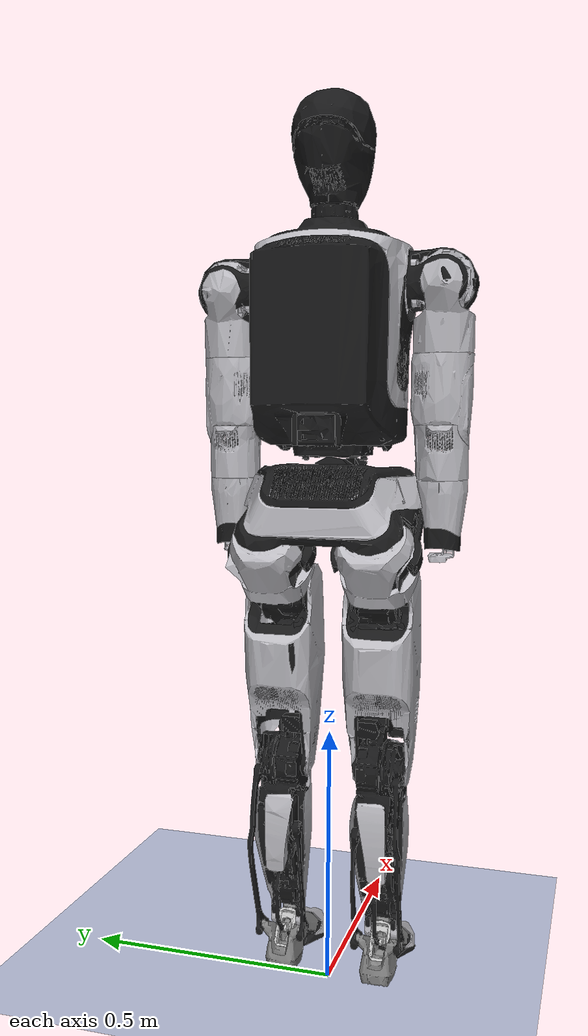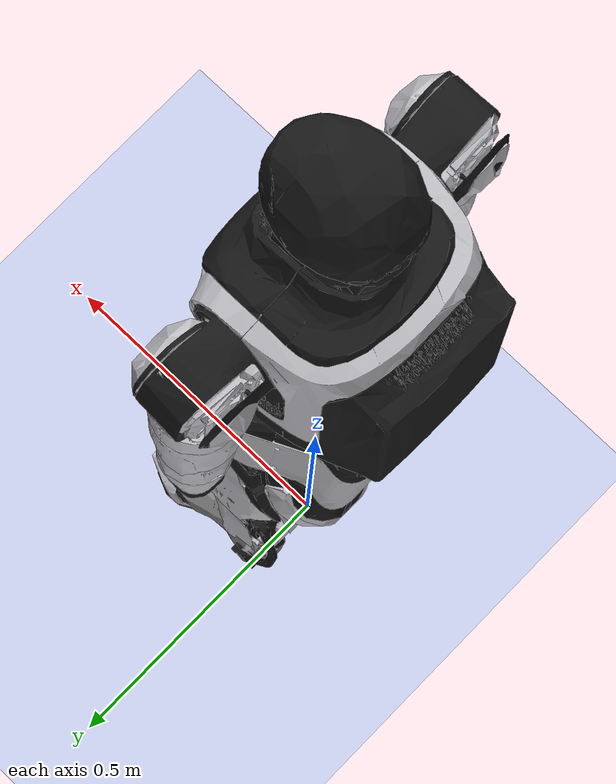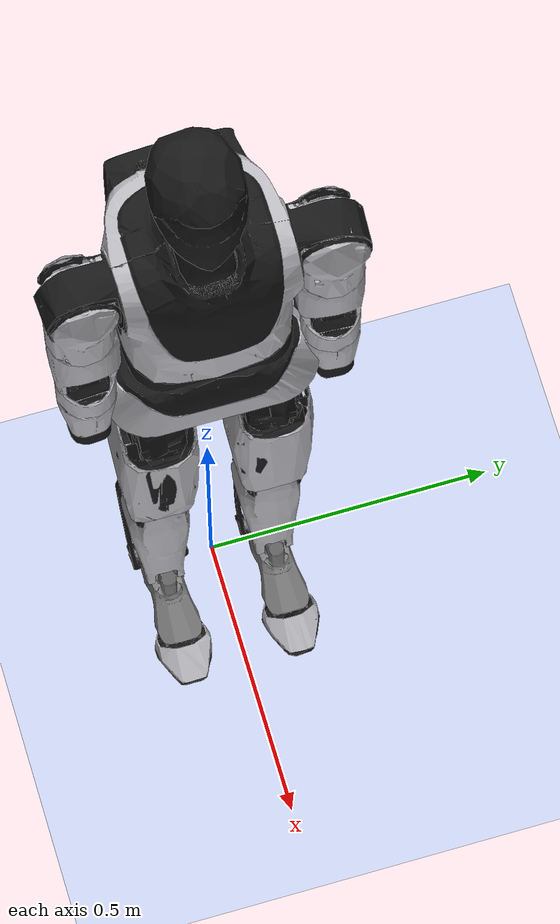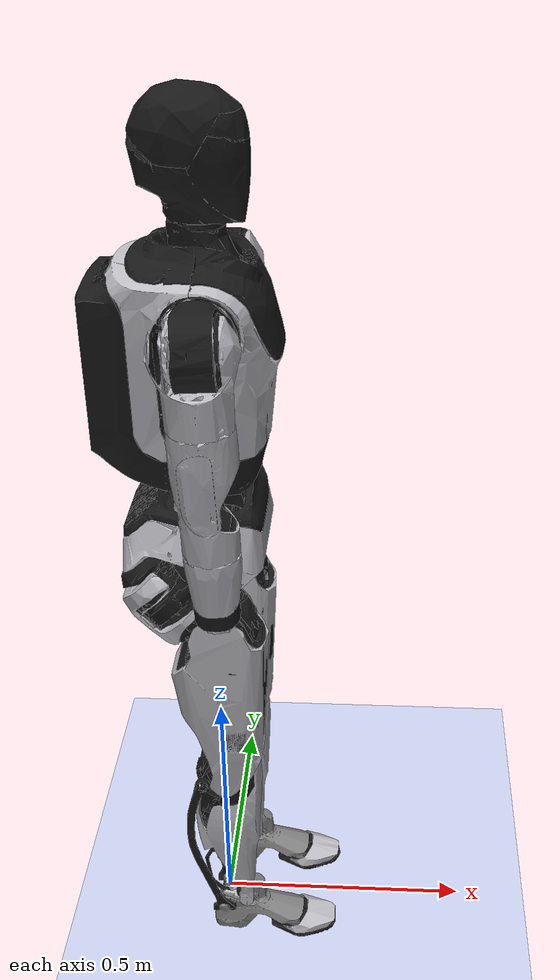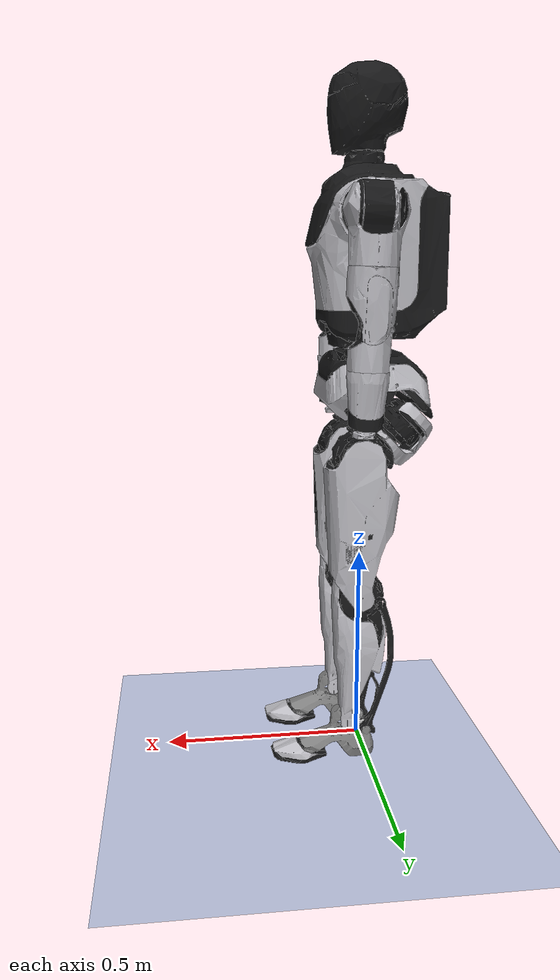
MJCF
<mujoco model="KAPEX0_mockup_wo_hand_260615">
  <compiler angle="radian" meshdir="meshes_lowpoly" autolimits="true" discardvisual="false"/>

  <default>
    <!-- Default properties for joints -->
    <joint limited="true" damping="0.5" armature="0.01" frictionloss="0.1"/>

    <!-- Default properties for visual/collision geometries -->
    <default class="visual_geom">
      <geom conaffinity="0" contype="0" density="0" group="1"/>
    </default>
    <default class="collision_geom">
      <geom conaffinity="1" contype="1" density="0" group="3" rgba="1 1 1 0.3"/>
    </default>
    <!-- Hip Roll, Yaw & Shoulder Pitch, Roll -->
    <default class="actuator_RO80">
      <joint armature="0.1556" damping="0.4183" frictionloss="1.2482"/>
      <motor ctrlrange="-100 100"/>

      <!-- Ankle Pitch -->
      <default class="actuator_ankle_pitch">
        <joint armature="0.287359"/>
      </default>

      <!-- Ankle Roll -->
      <default class="actuator_ankle_roll">
        <joint armature="0.117123"/>
      </default>
    </default>

    <!-- Hip Pitch, Knee -->
    <default class="actuator_RO100">
      <joint armature="0.4512" damping="0.4412" frictionloss="2.0040"/>
      <motor ctrlrange="-300 300"/>
    </default>

    <!-- Toe -->
    <default class="actuator_RI60">
      <joint armature="0.0087" damping="0.0745" frictionloss="0.3891"/>
      <motor ctrlrange="-30 30"/>
    </default>

    <!-- Waist RYP -->
    <default class="actuator_AK8064">
      <joint armature="0.2312" damping="0.6589" frictionloss="2.7165"/>
      <motor ctrlrange="-120 120"/>

      <!-- Waist (differential) -->
      <default class="actuator_AK8064_diff">
        <joint armature="0.4624"/>
        <motor ctrlrange="-240 240"/>
      </default>
    </default>

    <!-- Head Pitch -->
    <default class="actuator_AK7010">
      <joint armature="0.00414"/>
      <motor ctrlrange="-8.3 8.3"/>
    </default>

    <!-- Head Yaw -->
    <default class="actuator_AK606">
      <joint armature="0.0008766"/>
      <motor ctrlrange="-3 3"/>
    </default>

    <!-- Shoulder Yaw, Elbow -->
    <default class="actuator_AK1093">
      <joint armature="0.0081162"/>
      <motor ctrlrange="-53 53"/>
    </default>

    <!-- Wrist Yaw -->
    <default class="actuator_AK709">
      <joint armature="0.00288"/>
      <motor ctrlrange="-30 30"/>
    </default>

    <!-- Wrist Roll & Pitch -->
    <default class="actuator_linear">
      <joint armature="0.00006464"/>
      <motor ctrlrange="-7 7"/>
    </default>
  </default>

  <asset>
    <!-- LEGS -->
    <mesh name="pelvis" file="pelvis.STL"/>
    <mesh name="pelvis_link_cover" file="pelvis_link_cover.STL"/>
    <mesh name="pelvis_link_cover_1" file="pelvis_link_cover_1.STL"/>
    <mesh name="left_hip_yaw_link" file="left_hip_yaw_link.STL"/>
    <mesh name="left_hip_roll_link" file="left_hip_roll_link.STL"/>
    <mesh name="left_hip_roll_link_cover" file="left_hip_roll_link_cover.STL"/>
    <mesh name="left_hip_pitch_link" file="left_hip_pitch_link.STL"/>
    <mesh name="left_hip_pitch_link_cover" file="left_hip_pitch_link_cover.STL"/>
    <mesh name="left_hip_pitch_link_cover_1" file="left_hip_pitch_link_cover_1.STL"/>
    <mesh name="left_knee_link" file="left_knee_link.STL"/>
    <mesh name="left_knee_link_cover" file="left_knee_link_cover.STL"/>
    <mesh name="left_ankle_pitch_link" file="left_ankle_pitch_link.STL"/>
    <mesh name="left_ankle_roll_link" file="left_ankle_roll_link.STL"/>
    <mesh name="left_ankle_roll_collision_link" file="left_ankle_roll_collision_link.STL" scale="0.001 0.001 0.001"/>
    <mesh name="left_toe_pitch_link" file="left_toe_pitch_link.STL"/>
    <mesh name="left_toe_pitch_collision_link" file="left_toe_pitch_collision_link.STL" scale="0.001 0.001 0.001"/>
    <mesh name="left_toe_pitch_link_cover" file="left_toe_pitch_link_cover.STL"/>
    <mesh name="right_hip_yaw_link" file="right_hip_yaw_link.STL"/>
    <mesh name="right_hip_roll_link" file="right_hip_roll_link.STL"/>
    <mesh name="right_hip_roll_link_cover" file="right_hip_roll_link_cover.STL"/>
    <mesh name="right_hip_pitch_link" file="right_hip_pitch_link.STL"/>
    <mesh name="right_hip_pitch_link_cover" file="right_hip_pitch_link_cover.STL"/>
    <mesh name="right_hip_pitch_link_cover_1" file="right_hip_pitch_link_cover_1.STL"/>
    <mesh name="right_knee_link" file="right_knee_link.STL"/>
    <mesh name="right_knee_link_cover" file="right_knee_link_cover.STL"/>
    <mesh name="right_ankle_pitch_link" file="right_ankle_pitch_link.STL"/>
    <mesh name="right_ankle_roll_link" file="right_ankle_roll_link.STL"/>
    <mesh name="right_ankle_roll_collision_link" file="right_ankle_roll_collision_link.STL" scale="0.001 0.001 0.001"/>
    <mesh name="right_toe_pitch_link" file="right_toe_pitch_link.STL"/>
    <mesh name="right_toe_pitch_collision_link" file="right_toe_pitch_collision_link.STL" scale="0.001 0.001 0.001"/>
    <mesh name="right_toe_pitch_link_cover" file="right_toe_pitch_link_cover.STL"/>

    <!-- WAIST -->
    <mesh name="waist_roll_link" file="waist_roll_link.STL"/>
    <mesh name="waist_yaw_link" file="waist_yaw_link.STL"/>
    <mesh name="waist_yaw_link_cover" file="waist_yaw_link_cover.STL"/>
    <mesh name="waist_pitch_link" file="waist_pitch_link.STL"/>
    <mesh name="waist_pitch_link_cover" file="waist_pitch_link_cover.STL"/>
    <mesh name="waist_pitch_link_cover_1" file="waist_pitch_link_cover_1.STL"/>

    <!-- HEAD -->
    <mesh name="head_pitch_link" file="head_pitch_link.STL"/>
    <mesh name="head_pitch_link_cover" file="head_pitch_link_cover.STL"/>
    <mesh name="head_yaw_link" file="head_yaw_link.STL"/>
    <mesh name="head_yaw_link_cover" file="head_yaw_link_cover.STL"/>

    <!-- ARMS -->
    <mesh name="left_shoulder_pitch_link" file="left_shoulder_pitch_link.STL"/>
    <mesh name="left_shoulder_pitch_link_cover" file="left_shoulder_pitch_link_cover.STL"/>
    <mesh name="left_shoulder_roll_link" file="left_shoulder_roll_link.STL"/>
    <mesh name="left_shoulder_roll_link_cover" file="left_shoulder_roll_link_cover.STL"/>
    <mesh name="left_shoulder_yaw_link" file="left_shoulder_yaw_link.STL"/>
    <mesh name="left_shoulder_yaw_link_cover" file="left_shoulder_yaw_link_cover.STL"/>
    <mesh name="left_elbow_link" file="left_elbow_link.STL"/>
    <mesh name="left_elbow_link_cover" file="left_elbow_link_cover.STL"/>
    <mesh name="left_wrist_yaw_link" file="left_wrist_yaw_link.STL"/>
    <mesh name="left_wrist_yaw_link_cover" file="left_wrist_yaw_link_cover.STL"/>
    <mesh name="left_wrist_roll_link" file="left_wrist_roll_link.STL"/>
    <mesh name="left_wrist_pitch_link" file="left_wrist_pitch_link.STL"/>
    <mesh name="right_shoulder_pitch_link" file="right_shoulder_pitch_link.STL"/>
    <mesh name="right_shoulder_pitch_link_cover" file="right_shoulder_pitch_link_cover.STL"/>
    <mesh name="right_shoulder_roll_link" file="right_shoulder_roll_link.STL"/>
    <mesh name="right_shoulder_roll_link_cover" file="right_shoulder_roll_link_cover.STL"/>
    <mesh name="right_shoulder_yaw_link" file="right_shoulder_yaw_link.STL"/>
    <mesh name="right_shoulder_yaw_link_cover" file="right_shoulder_yaw_link_cover.STL"/>
    <mesh name="right_elbow_link" file="right_elbow_link.STL"/>
    <mesh name="right_elbow_link_cover" file="right_elbow_link_cover.STL"/>
    <mesh name="right_wrist_yaw_link" file="right_wrist_yaw_link.STL"/>
    <mesh name="right_wrist_yaw_link_cover" file="right_wrist_yaw_link_cover.STL"/>
    <mesh name="right_wrist_roll_link" file="right_wrist_roll_link.STL"/>
    <mesh name="right_wrist_pitch_link" file="right_wrist_pitch_link.STL"/>

    <!-- MATERIALS -->
    <material name="space_gray" rgba="0.741176 0.737255 0.760784 1"/>
    <material name="black" rgba="0.094118 0.094118 0.098039 1"/>
    <material name="silver" rgba="0.752941 0.752941 0.752941 1"/>
    <material name="gray" rgba="0.501961 0.501961 0.501961 1"/>
  </asset>

  <worldbody>
    <!-- PELVIS -->
    <body name="pelvis" pos="0 0 0.911">
      <inertial pos="0.004228 6.74e-05 0.03717" quat="0.448368 0.447503 -0.547511 0.546753" mass="6.804" diaginertia="0.067873 0.0569161 0.0251899"/>
      <joint name="floating_base_joint" type="free"/>
      <geom class="visual_geom" type="mesh" material="black" mesh="pelvis"/>
      <geom name="Pelvis" class="collision_geom" size="0.09 0.09" pos="-0.01 0 0.025" quat="0.707107 0.707107 0 0" type="capsule"/>
      <body name="pelvis_link_cover">
        <inertial pos="0 0 0" mass="0.0001" diaginertia="1e-07 1e-07 1e-07"/>
        <geom class="visual_geom" type="mesh" material="space_gray" mesh="pelvis_link_cover"/>
      </body>
      <body name="pelvis_link_cover_1">
        <inertial pos="0 0 0" mass="0.0001" diaginertia="1e-07 1e-07 1e-07"/>
        <geom class="visual_geom" type="mesh" material="black" mesh="pelvis_link_cover_1"/>
      </body>

      <!-- LEFT LEG -->
      <body name="left_hip_yaw_link" pos="0.00021213 0.1005 0.00021215" quat="0.923879 0 0.382684 0">
        <inertial pos="-0.007526 0.0024503 -0.062743" quat="0.994136 0.0857753 -0.0587535 0.029723" mass="2.322" diaginertia="0.0077187 0.00595024 0.00374186"/>
        <joint name="left_hip_yaw_joint" pos="0 0 0" axis="0 0 1" class="actuator_RO80" range="-0.34907 0.7854" actuatorfrcrange="-100 100"/>
        <geom class="visual_geom" type="mesh" material="black" mesh="left_hip_yaw_link"/>
        <body name="left_hip_roll_link" pos="0.021 0 -0.081">
          <inertial pos="0.071966 -0.002406 -0.004282" quat="0.426887 0.541083 0.593633 0.415448" mass="3.242" diaginertia="0.012779 0.0108938 0.00565045"/>
          <joint name="left_hip_roll_joint" pos="0 0 0" axis="1 0 0" class="actuator_RO80" range="-0.34907 0.34907" actuatorfrcrange="-100 100"/>
          <geom class="visual_geom" type="mesh" material="black" mesh="left_hip_roll_link"/>
          <body name="left_hip_roll_link_cover">
            <inertial pos="0 0 0" mass="0.0001" diaginertia="1e-07 1e-07 1e-07"/>
            <geom class="visual_geom" type="mesh" material="space_gray" mesh="left_hip_roll_link_cover"/>
          </body>
          <body name="left_hip_pitch_link" pos="0.0932 0 0" quat="0.923879 0 -0.382684 0">
            <inertial pos="0.000979 0.006906 -0.13909" quat="0.71893 0.0256683 0.00799493 0.694562" mass="5.485" diaginertia="0.0419282 0.0405238 0.0155601"/>
            <joint name="left_hip_pitch_joint" pos="0 0 0" axis="0 1 0" class="actuator_RO100" range="-1.5708 0.5236" actuatorfrcrange="-300 300"/>
            <geom class="visual_geom" type="mesh" material="black" mesh="left_hip_pitch_link"/>
            <geom name="Left_Upper_Leg" class="collision_geom" size="0.08 0.15" pos="0 0 -0.17" type="capsule"/>
            <body name="left_hip_pitch_link_cover">
              <inertial pos="0 0 0" mass="0.0001" diaginertia="1e-07 1e-07 1e-07"/>
              <geom class="visual_geom" type="mesh" material="space_gray" mesh="left_hip_pitch_link_cover"/>
            </body>
            <body name="left_hip_pitch_link_cover_1">
              <inertial pos="0 0 0" mass="0.0001" diaginertia="1e-07 1e-07 1e-07"/>
              <geom class="visual_geom" type="mesh" material="black" mesh="left_hip_pitch_link_cover_1"/>
            </body>
            <body name="left_knee_link" pos="-0.0034097 -0.0026122 -0.345">
              <inertial pos="0.003115 0.001439 -0.095936" quat="0.682888 0.012063 0.0136948 0.730295" mass="4.891" diaginertia="0.0508695 0.0486603 0.00680726"/>
              <joint name="left_knee_joint" pos="0 0 0" axis="0 1 0" class="actuator_RO100" range="0 1.9199" actuatorfrcrange="-300 300"/>
              <geom class="visual_geom" type="mesh" material="black" mesh="left_knee_link"/>
              <geom name="Left_Lower_Leg" class="collision_geom" size="0.06 0.1" pos="0 0 -0.2" type="capsule"/>
              <body name="left_knee_link_cover">
                <inertial pos="0 0 0" mass="0.0001" diaginertia="1e-07 1e-07 1e-07"/>
                <geom class="visual_geom" type="mesh" material="space_gray" mesh="left_knee_link_cover"/>
              </body>
              <body name="left_ankle_pitch_link" pos="0.030105 0 -0.33999">
                <inertial pos="-0.013184 0.0005938 -0.015486" quat="0.946834 -0.000723362 -0.321703 0.00353132" mass="0.3104" diaginertia="0.000415525 0.000377788 7.02164e-05"/>
                <joint name="left_ankle_pitch_joint" pos="0 0 0" axis="0 1 0" class="actuator_ankle_pitch" range="-0.5236 0.87267" actuatorfrcrange="-100 100"/>
                <geom class="visual_geom" type="mesh" material="silver" mesh="left_ankle_pitch_link"/>
                <body name="left_ankle_roll_link" quat="0.948368 0 0.317171 0">
                  <inertial pos="0.026276 0.0001407 -0.017729" quat="0.350992 0.602003 0.633892 0.335526" mass="0.7451" diaginertia="0.00252885 0.00247554 0.000873017"/>
                  <joint name="left_ankle_roll_joint" pos="0 0 0" axis="0 0 1" class="actuator_ankle_roll" range="-0.34907 0.34907" actuatorfrcrange="-100 100"/>
                  <geom class="visual_geom" type="mesh" material="gray" mesh="left_ankle_roll_link"/>
                  <geom name="Left_Foot" class="collision_geom" type="capsule" size="0.045" fromto="0.14119 -0.00100 0.05202 0.00540 -0.00100 -0.05026"/>
                  <body name="left_toe_pitch_link" pos="0.12007 -0.0010001 0.013573" quat="0.948368 0 -0.317171 0">
                    <inertial pos="0.0259024 -2.07e-05 -0.009958" quat="0.000992335 0.748682 -0.000736071 0.662928" mass="0.3163" diaginertia="0.000407986 0.00026895 0.000191934"/>
                    <geom class="visual_geom" type="mesh" material="black" mesh="left_toe_pitch_link"/>

                    <body name="left_toe_pitch_link_cover">
                      <inertial pos="0 0 0" mass="0.0001" diaginertia="1e-07 1e-07 1e-07"/>
                      <geom class="visual_geom" type="mesh" material="space_gray" mesh="left_toe_pitch_link_cover"/>
                    </body>
                  </body>
                </body>
              </body>
            </body>
          </body>
        </body>
      </body>

      <!-- RIGHT LEG -->
      <body name="right_hip_yaw_link" pos="0.00021213 -0.1005 0.00021215" quat="0.923879 0 0.382684 0">
        <inertial pos="-0.007526 -0.00245 -0.062743" quat="0.994136 -0.0857752 -0.0587535 -0.0297233" mass="2.3221" diaginertia="0.0077187 0.00595024 0.00374186"/>
        <joint name="right_hip_yaw_joint" pos="0 0 0" axis="0 0 1" class="actuator_RO80" range="-0.7854 0.34907" actuatorfrcrange="-100 100"/>
        <geom class="visual_geom" type="mesh" material="black" mesh="right_hip_yaw_link"/>
        <body name="right_hip_roll_link" pos="0.021 0 -0.081">
          <inertial pos="0.07197 0.0024082 -0.0042821" quat="0.415422 0.593601 0.541152 0.426869" mass="3.242" diaginertia="0.012778 0.0108919 0.00565011"/>
          <joint name="right_hip_roll_joint" pos="0 0 0" axis="1 0 0" class="actuator_RO80" range="-0.34907 0.34907" actuatorfrcrange="-100 100"/>
          <geom class="visual_geom" type="mesh" material="black" mesh="right_hip_roll_link"/>
          <body name="right_hip_roll_link_cover">
            <inertial pos="0 0 0" mass="0.0001" diaginertia="1e-07 1e-07 1e-07"/>
            <geom class="visual_geom" type="mesh" material="space_gray" mesh="right_hip_roll_link_cover"/>
          </body>
          <body name="right_hip_pitch_link" pos="0.0932 0 0" quat="0.923879 0 -0.382684 0">
            <inertial pos="0.0009793 -0.006908 -0.13908" quat="0.694405 0.00805444 0.0256138 0.719083" mass="5.485" diaginertia="0.041926 0.0405207 0.0155593"/>
            <joint name="right_hip_pitch_joint" pos="0 0 0" axis="0 1 0" class="actuator_RO100" range="-1.5708 0.5236" actuatorfrcrange="-300 300"/>
            <geom class="visual_geom" type="mesh" material="black" mesh="right_hip_pitch_link"/>
            <geom name="Right_Upper_Leg" class="collision_geom" size="0.08 0.15" pos="0 0 -0.17" type="capsule"/>
            <body name="right_hip_pitch_link_cover">
              <inertial pos="0 0 0" mass="0.0001" diaginertia="1e-07 1e-07 1e-07"/>
              <geom class="visual_geom" type="mesh" material="space_gray" mesh="right_hip_pitch_link_cover"/>
            </body>
            <body name="right_hip_pitch_link_cover_1">
              <inertial pos="0 0 0" mass="0.0001" diaginertia="1e-07 1e-07 1e-07"/>
              <geom class="visual_geom" type="mesh" material="black" mesh="right_hip_pitch_link_cover_1"/>
            </body>
            <body name="right_knee_link" pos="-0.0034097 0.0026122 -0.345">
              <inertial pos="0.003116 0.002172 -0.095939" quat="0.730266 0.0136982 0.0120677 0.682919" mass="4.891" diaginertia="0.0508704 0.0486624 0.00680722"/>
              <joint name="right_knee_joint" pos="0 0 0" axis="0 1 0" class="actuator_RO100" range="0 1.9199" actuatorfrcrange="-300 300"/>
              <geom class="visual_geom" type="mesh" material="black" mesh="right_knee_link"/>
              <geom name="Right_Lower_Leg" class="collision_geom" size="0.06 0.1" pos="0 0 -0.2" type="capsule"/>
              <body name="right_knee_link_cover">
                <inertial pos="0 0 0" mass="0.0001" diaginertia="1e-07 1e-07 1e-07"/>
                <geom class="visual_geom" type="mesh" material="space_gray" mesh="right_knee_link_cover"/>
              </body>
              <body name="right_ankle_pitch_link" pos="0.030105 0 -0.33999">
                <inertial pos="-0.013123 0.0014062 -0.015406" quat="0.946836 0.000722772 -0.321696 -0.00352994" mass="0.3104" diaginertia="0.000415522 0.000377778 7.02102e-05"/>
                <joint name="right_ankle_pitch_joint" pos="0 0 0" axis="0 1 0" class="actuator_ankle_pitch" range="-0.5236 0.87267" actuatorfrcrange="-100 100"/>
                <geom class="visual_geom" type="mesh" material="silver" mesh="right_ankle_pitch_link"/>
                <body name="right_ankle_roll_link" quat="0.948368 0 0.317171 0">
                  <inertial pos="0.02627 -0.00014 -0.02379" quat="0.335449 0.634033 0.60185 0.351074" mass="0.7451" diaginertia="0.00252865 0.00247539 0.000872962"/>
                  <joint name="right_ankle_roll_joint" pos="0 0 0" axis="0 0 1" class="actuator_ankle_roll" range="-0.34907 0.34907" actuatorfrcrange="-100 100"/>
                  <geom class="visual_geom" type="mesh" material="gray" mesh="right_ankle_roll_link"/>
                  <geom name="Right_Foot" class="collision_geom" type="capsule" size="0.045" fromto="0.14119 0.00100 0.05201 0.00540 0.00100 -0.05026"/>
                  <body name="right_toe_pitch_link" pos="0.12007 0.0010001 0.013567" quat="0.948368 0 -0.317171 0">
                    <inertial pos="0.0259 2.09e-05 -0.009958" quat="-0.000987356 0.748684 0.000734503 0.662926" mass="0.3163" diaginertia="0.000407986 0.00026895 0.000191933"/>
                    <geom class="visual_geom" type="mesh" material="black" mesh="right_toe_pitch_link"/>

                    <body name="right_toe_pitch_link_cover">
                      <inertial pos="0 0 0" mass="0.0001" diaginertia="1e-07 1e-07 1e-07"/>
                      <geom class="visual_geom" type="mesh" material="space_gray" mesh="right_toe_pitch_link_cover"/>
                    </body>
                  </body>
                </body>
              </body>
            </body>
          </body>
        </body>
      </body>

      <!-- WAIST -->
      <body name="waist_roll_link" pos="0.027786 0 0.074086">
        <inertial pos="-0.001959 -7.953e-08 0.040667" quat="0.707081 0.707088 0.00555191 -0.00555196" mass="1.461" diaginertia="0.00290896 0.00268374 0.0024244"/>
        <joint name="waist_roll_joint" pos="0 0 0" axis="1 0 0" class="actuator_AK8064" range="-0.34907 0.34907" actuatorfrcrange="-120 120"/>
        <geom class="visual_geom" type="mesh" material="black" mesh="waist_roll_link"/>
        <body name="waist_yaw_link" pos="0 0 0.0519">
          <inertial pos="-0.005028 -1.04e-05 0.0297" quat="7.25207e-05 0.715203 4.72721e-05 0.698917" mass="0.869" diaginertia="0.00207792 0.00186511 0.00168913"/>
          <joint name="waist_yaw_joint" pos="0 0 0" axis="0 0 1" class="actuator_AK8064_diff" range="-0.5236 0.5236" actuatorfrcrange="-120 120"/>
          <geom class="visual_geom" type="mesh" material="black" mesh="waist_yaw_link"/>
          <body name="waist_yaw_link_cover">
            <inertial pos="0 0 0" mass="0.0001" diaginertia="1e-07 1e-07 1e-07"/>
            <geom class="visual_geom" type="mesh" material="black" mesh="waist_yaw_link_cover"/>
          </body>
          <body name="waist_pitch_link" pos="0 0 0.061">
            <inertial pos="-0.06907 0.001639 0.16651" quat="0.683537 -0.013141 0.00401441 0.729786" mass="25.812" diaginertia="0.411866 0.368752 0.286101"/>
            <joint name="waist_pitch_joint" pos="0 0 0" axis="0 1 0" class="actuator_AK8064_diff" range="-0.17453 0.7854" actuatorfrcrange="-120 120"/>
            <geom class="visual_geom" type="mesh" material="black" mesh="waist_pitch_link"/>
            <geom name="Chest" class="collision_geom" size="0.14 0.1" pos="-0.068 0 0.15" type="capsule"/>
            <body name="waist_pitch_link_cover">
              <inertial pos="0 0 0" mass="0.0001" diaginertia="1e-07 1e-07 1e-07"/>
              <geom class="visual_geom" type="mesh" material="space_gray" mesh="waist_pitch_link_cover"/>
            </body>
            <body name="waist_pitch_link_cover_1">
              <inertial pos="0 0 0" mass="0.0001" diaginertia="1e-07 1e-07 1e-07"/>
              <geom class="visual_geom" type="mesh" material="black" mesh="waist_pitch_link_cover_1"/>
            </body>

            <!-- HEAD -->
            <body name="head_pitch_link" pos="-0.0165 0 0.3285">
              <inertial pos="-0.002737 0.0004272 0.0397864" quat="0.979963 -0.00287485 0.185952 0.0713175" mass="0.2676" diaginertia="0.000462177 0.000416313 0.000304835"/>
              <joint name="head_pitch_joint" pos="0 0 0" axis="0 1 0" class="actuator_AK7010" range="-0.29671 0.7854" actuatorfrcrange="-8.3 8.3"/>
              <geom class="visual_geom" type="mesh" material="black" mesh="head_pitch_link"/>
              <body name="head_pitch_link_cover">
                <inertial pos="0 0 0" mass="0.0001" diaginertia="1e-07 1e-07 1e-07"/>
                <geom class="visual_geom" type="mesh" material="black" mesh="head_pitch_link_cover"/>
              </body>
              <body name="head_yaw_link" pos="-0.005 0 0.087">
                <inertial pos="-0.0028466 4.906e-05 0.083016" quat="0.652803 -0.256675 -0.260143 0.663545" mass="3.414" diaginertia="0.0128694 0.00959201 0.00908989"/>
                <joint name="head_yaw_joint" pos="0 0 0" axis="0 0 1" class="actuator_AK606" range="-1.22 1.22" actuatorfrcrange="-3 3"/>
                <geom class="visual_geom" type="mesh" material="black" mesh="head_yaw_link"/>
                <geom name="Head" class="collision_geom" size="0.1" pos="0 0 0.08"/>
                <body name="head_yaw_link_cover">
                  <inertial pos="0 0 0" mass="0.0001" diaginertia="1e-07 1e-07 1e-07"/>
                  <geom class="visual_geom" type="mesh" material="black" mesh="head_yaw_link_cover"/>
                </body>
                <!-- zed -->
                <body name="zed_link" pos="0.0405855 2.4789e-08 0.116182"/>
                <!-- os0 -->
                <body name="os0_link" pos="0.0363995 0 0.04765"/>
              </body>
            </body>

            <!-- LEFT ARM -->
            <body name="left_shoulder_pitch_link" pos="-0.012869 0.12432 0.24937" quat="0.999345 0.0169826 -0.0165689 -0.0273387">
              <inertial pos="-0.0032162 0.070854 -1.8641e-05" quat="0.701704 0.710917 0.033664 0.0327807" mass="2.8978" diaginertia="0.00508137 0.00321255 0.00290527"/>
              <joint name="left_shoulder_pitch_joint" pos="0 0 0" axis="0 1 0" class="actuator_RO80" range="-3.142 0.873" actuatorfrcrange="-100 100"/>
              <geom class="visual_geom" type="mesh" material="space_gray" mesh="left_shoulder_pitch_link"/>
              <body name="left_shoulder_pitch_link_cover">
                <inertial pos="0 0 0" mass="0.0001" diaginertia="1e-07 1e-07 1e-07"/>
                <geom class="visual_geom" type="mesh" material="black" mesh="left_shoulder_pitch_link_cover"/>
              </body>
              <body name="left_shoulder_roll_link" pos="-0.00055 0.08 0" quat="0.999848 -0.0174526 0 0">
                <inertial pos="0.00631153 -0.00166912 -0.0693041" quat="0.93948 -0.0304639 0.332146 0.0782819" mass="2.07581" diaginertia="0.00396167 0.00371541 0.00273187"/>
                <joint name="left_shoulder_roll_joint" pos="0 0 0" axis="1 0 0" class="actuator_RO80" range="-0.262 3.054" actuatorfrcrange="-100 100"/>
                <geom class="visual_geom" type="mesh" material="space_gray" mesh="left_shoulder_roll_link"/>
                <geom name="Left_Upper_Arm" class="collision_geom" size="0.055 0.085" pos="0 0 -0.085" type="capsule"/>
                <body name="left_shoulder_roll_link_cover">
                  <inertial pos="0 0 0" mass="0.0001" diaginertia="1e-07 1e-07 1e-07"/>
                  <geom class="visual_geom" type="mesh" material="black" mesh="left_shoulder_roll_link_cover"/>
                </body>
                <body name="left_shoulder_yaw_link" pos="0 0 -0.13045">
                  <inertial pos="-0.00168842 0.00198321 -0.0486133" quat="0.706813 0.0396392 0.0727155 0.702535" mass="1.72701" diaginertia="0.00238204 0.00172982 0.00150403"/>
                  <joint name="left_shoulder_yaw_joint" pos="0 0 0" axis="0 0 1" class="actuator_AK1093" range="-1.658 1.658" actuatorfrcrange="-53 53"/>
                  <geom class="visual_geom" type="mesh" material="space_gray" mesh="left_shoulder_yaw_link"/>
                  <body name="left_shoulder_yaw_link_cover">
                    <inertial pos="0 0 0" mass="0.0001" diaginertia="1e-07 1e-07 1e-07"/>
                    <geom class="visual_geom" type="mesh" material="black" mesh="left_shoulder_yaw_link_cover"/>
                  </body>
                  <body name="left_elbow_link" pos="0 0 -0.124">
                    <inertial pos="-0.000994794 -9.79601e-05 -0.0519449" quat="0.514412 0.510957 -0.476485 0.497258" mass="1.50519" diaginertia="0.00138298 0.00100064 0.000816902"/>
                    <joint name="left_elbow_joint" pos="0 0 0" axis="0 1 0" class="actuator_AK1093" range="-1.658 0.175" actuatorfrcrange="-53 53"/>
                    <geom class="visual_geom" type="mesh" material="space_gray" mesh="left_elbow_link"/>
                    <geom name="Left_Forearm" class="collision_geom" size="0.045 0.06" pos="0 0 -0.125" type="capsule"/>
                    <body name="left_elbow_link_cover">
                      <inertial pos="0 0 0" mass="0.0001" diaginertia="1e-07 1e-07 1e-07"/>
                      <geom class="visual_geom" type="mesh" material="black" mesh="left_elbow_link_cover"/>
                    </body>
                    <body name="left_wrist_yaw_link" pos="0 0 -0.1085">
                      <inertial pos="8.7414e-06 -0.00076707 -0.031405" quat="0.70618 0.0330269 -0.0322229 0.706527" mass="0.66942" diaginertia="0.000476172 0.00040364 0.000369978"/>
                      <joint name="left_wrist_yaw_joint" pos="0 0 0" axis="0 0 1" class="actuator_AK709" range="-1.745 1.745" actuatorfrcrange="-30 30"/>
                      <geom class="visual_geom" type="mesh" material="space_gray" mesh="left_wrist_yaw_link"/>
                      <body name="left_wrist_yaw_link_cover">
                        <inertial pos="0 0 0" mass="0.0001" diaginertia="1e-07 1e-07 1e-07"/>
                        <geom class="visual_geom" type="mesh" material="black" mesh="left_wrist_yaw_link_cover"/>
                      </body>
                      <body name="left_wrist_roll_link" pos="0 0.017 -0.113">
                        <inertial pos="6.13702e-05 6.13697e-05 -0.006" quat="0.924032 -0.00626278 -0.00259747 0.382255" mass="0.0150109" diaginertia="8.39554e-07 8.39547e-07 2.63028e-07"/>
                        <joint name="left_wrist_roll_joint" pos="0 0 0" axis="1 0 0" class="actuator_linear" range="-0.925 0.541" actuatorfrcrange="-7 7"/>
                        <geom class="visual_geom" type="mesh" material="space_gray" mesh="left_wrist_roll_link"/>
                        <body name="left_wrist_pitch_link" pos="0 -0.0054 -0.012">
                          <inertial pos="5.59536e-05 -0.013192 -0.0141058" quat="-0.0411349 0.706242 -0.0523255 0.704835" mass="0.0505177" diaginertia="1.49013e-05 9.1454e-06 7.08838e-06"/>
                          <joint name="left_wrist_pitch_joint" pos="0 0 0" axis="0 1 0" class="actuator_linear" range="-1.047 1.047" actuatorfrcrange="-7 7"/>
                          <geom class="visual_geom" type="mesh" material="space_gray" mesh="left_wrist_pitch_link"/>
                        </body>
                      </body>
                    </body>
                  </body>
                </body>
              </body>
            </body>

            <!-- RIGHT ARM -->
            <body name="right_shoulder_pitch_link" pos="-0.012869 -0.12432 0.24937" quat="0.999345 -0.0169821 -0.0165688 0.0273387">
              <inertial pos="-0.0031655 -0.070765 3.7134e-05" quat="0.710836 0.701787 -0.032787 -0.0336675" mass="2.9012" diaginertia="0.00508148 0.00321255 0.00290537"/>
              <joint name="right_shoulder_pitch_joint" pos="0 0 0" axis="0 1 0" class="actuator_RO80" range="-3.142 0.873" actuatorfrcrange="-100 100"/>
              <geom class="visual_geom" type="mesh" material="space_gray" mesh="right_shoulder_pitch_link"/>
              <body name="right_shoulder_pitch_link_cover">
                <inertial pos="0 0 0" mass="0.0001" diaginertia="1e-07 1e-07 1e-07"/>
                <geom class="visual_geom" type="mesh" material="black" mesh="right_shoulder_pitch_link_cover"/>
              </body>
              <body name="right_shoulder_roll_link" pos="-0.00055 -0.08 0" quat="0.999848 0.0174526 0 0">
                <inertial pos="0.00630055 0.00167225 -0.0693024" quat="0.939259 0.0292028 0.332361 -0.0804701" mass="2.07587" diaginertia="0.00396166 0.0037162 0.00273152"/>
                <joint name="right_shoulder_roll_joint" pos="0 0 0" axis="1 0 0" class="actuator_RO80" range="-3.054 0.262" actuatorfrcrange="-100 100"/>
                <geom class="visual_geom" type="mesh" material="space_gray" mesh="right_shoulder_roll_link"/>
                <geom name="Right_Upper_Arm" class="collision_geom" size="0.055 0.085" pos="0 0 -0.085" type="capsule"/>
                <body name="right_shoulder_roll_link_cover">
                  <inertial pos="0 0 0" mass="0.0001" diaginertia="1e-07 1e-07 1e-07"/>
                  <geom class="visual_geom" type="mesh" material="black" mesh="right_shoulder_roll_link_cover"/>
                </body>
                <body name="right_shoulder_yaw_link" pos="0 0 -0.13045">
                  <inertial pos="-0.00165143 -0.00198303 -0.0488347" quat="0.702639 0.0736214 0.0406493 0.706559" mass="1.72701" diaginertia="0.00238202 0.00173013 0.00150377"/>
                  <joint name="right_shoulder_yaw_joint" pos="0 0 0" axis="0 0 1" class="actuator_AK1093" range="-1.658 1.658" actuatorfrcrange="-53 53"/>
                  <geom class="visual_geom" type="mesh" material="space_gray" mesh="right_shoulder_yaw_link"/>
                  <body name="right_shoulder_yaw_link_cover">
                    <inertial pos="0 0 0" mass="0.0001" diaginertia="1e-07 1e-07 1e-07"/>
                    <geom class="visual_geom" type="mesh" material="black" mesh="right_shoulder_yaw_link_cover"/>
                  </body>
                  <body name="right_elbow_link" pos="0 0 -0.124">
                    <inertial pos="-0.00114649 0.000168965 -0.0516603" quat="0.5056 0.519235 -0.492782 0.48159" mass="1.49705" diaginertia="0.00136973 0.000994189 0.000810564"/>
                    <joint name="right_elbow_joint" pos="0 0 0" axis="0 1 0" class="actuator_AK1093" range="-1.658 0.175" actuatorfrcrange="-53 53"/>
                    <geom class="visual_geom" type="mesh" material="space_gray" mesh="right_elbow_link"/>
                    <geom name="Right_Forearm" class="collision_geom" size="0.045 0.06" pos="0 0 -0.125" type="capsule"/>
                    <body name="right_elbow_link_cover">
                      <inertial pos="0 0 0" mass="0.0001" diaginertia="1e-07 1e-07 1e-07"/>
                      <geom class="visual_geom" type="mesh" material="black" mesh="right_elbow_link_cover"/>
                    </body>
                    <body name="right_wrist_yaw_link" pos="0 0 -0.1085">
                      <inertial pos="-2.6905e-05 0.000769789 -0.0314034" quat="0.706563 -0.0331531 0.0321484 0.706141" mass="0.669508" diaginertia="0.000476227 0.000403607 0.000369972"/>
                      <joint name="right_wrist_yaw_joint" pos="0 0 0" axis="0 0 1" class="actuator_AK709" range="-1.745 1.745" actuatorfrcrange="-30 30"/>
                      <geom class="visual_geom" type="mesh" material="space_gray" mesh="right_wrist_yaw_link"/>
                      <body name="right_wrist_yaw_link_cover">
                        <inertial pos="0 0 0" mass="0.0001" diaginertia="1e-07 1e-07 1e-07"/>
                        <geom class="visual_geom" type="mesh" material="black" mesh="right_wrist_yaw_link_cover"/>
                      </body>
                      <body name="right_wrist_roll_link" pos="0 -0.017 -0.113">
                        <inertial pos="6.13702e-05 6.13697e-05 -0.006" quat="0.924032 -0.00626278 -0.00259746 0.382256" mass="0.0150109" diaginertia="8.39554e-07 8.39547e-07 2.63028e-07"/>
                        <joint name="right_wrist_roll_joint" pos="0 0 0" axis="1 0 0" class="actuator_linear" range="-0.541 0.925" actuatorfrcrange="-7 7"/>
                        <geom class="visual_geom" type="mesh" material="space_gray" mesh="right_wrist_roll_link"/>
                        <body name="right_wrist_pitch_link" pos="0 0.0054 -0.012">
                          <inertial pos="-5.59531e-05 0.013192 -0.0141058" quat="0.0523257 0.704835 0.0411348 0.706242" mass="0.0505177" diaginertia="1.49013e-05 9.1454e-06 7.08838e-06"/>
                          <joint name="right_wrist_pitch_joint" pos="0 0 0" axis="0 1 0" class="actuator_linear" range="-1.047 1.047" actuatorfrcrange="-7 7"/>
                          <geom class="visual_geom" type="mesh" material="space_gray" mesh="right_wrist_pitch_link"/>
                        </body>
                      </body>
                    </body>
                  </body>
                </body>
              </body>
            </body>
          </body>
        </body>
      </body>
    </body>
  </worldbody>

  <actuator>
    <!-- LEFT LEG -->
    <motor name="left_hip_yaw_joint" joint="left_hip_yaw_joint" class="actuator_RO80"/>
    <motor name="left_hip_roll_joint" joint="left_hip_roll_joint" class="actuator_RO80"/>
    <motor name="left_hip_pitch_joint" joint="left_hip_pitch_joint" class="actuator_RO100"/>
    <motor name="left_knee_joint" joint="left_knee_joint" class="actuator_RO100"/>
    <motor name="left_ankle_pitch_joint" joint="left_ankle_pitch_joint" class="actuator_ankle_pitch"/>
    <motor name="left_ankle_roll_joint" joint="left_ankle_roll_joint" class="actuator_ankle_roll"/>

    <!-- RIGHT LEG -->
    <motor name="right_hip_yaw_joint" joint="right_hip_yaw_joint" class="actuator_RO80"/>
    <motor name="right_hip_roll_joint" joint="right_hip_roll_joint" class="actuator_RO80"/>
    <motor name="right_hip_pitch_joint" joint="right_hip_pitch_joint" class="actuator_RO100"/>
    <motor name="right_knee_joint" joint="right_knee_joint" class="actuator_RO100"/>
    <motor name="right_ankle_pitch_joint" joint="right_ankle_pitch_joint" class="actuator_ankle_pitch"/>
    <motor name="right_ankle_roll_joint" joint="right_ankle_roll_joint" class="actuator_ankle_roll"/>

    <!-- WAIST -->
    <motor name="waist_roll_joint" joint="waist_roll_joint" class="actuator_AK8064"/>
    <motor name="waist_yaw_joint" joint="waist_yaw_joint" class="actuator_AK8064_diff"/>
    <motor name="waist_pitch_joint" joint="waist_pitch_joint" class="actuator_AK8064_diff"/>

    <!-- HEAD -->
    <motor name="head_pitch_joint" joint="head_pitch_joint" class="actuator_AK7010"/>
    <motor name="head_yaw_joint" joint="head_yaw_joint" class="actuator_AK606"/>

    <!-- LEFT ARM -->
    <motor name="left_shoulder_pitch_joint" joint="left_shoulder_pitch_joint" class="actuator_RO80"/>
    <motor name="left_shoulder_roll_joint" joint="left_shoulder_roll_joint" class="actuator_RO80"/>
    <motor name="left_shoulder_yaw_joint" joint="left_shoulder_yaw_joint" class="actuator_AK1093"/>
    <motor name="left_elbow_joint" joint="left_elbow_joint" class="actuator_AK1093"/>
    <motor name="left_wrist_yaw_joint" joint="left_wrist_yaw_joint" class="actuator_AK709"/>
    <motor name="left_wrist_roll_joint" joint="left_wrist_roll_joint" class="actuator_linear"/>
    <motor name="left_wrist_pitch_joint" joint="left_wrist_pitch_joint" class="actuator_linear"/>

    <!-- RIGHT ARM -->
    <motor name="right_shoulder_pitch_joint" joint="right_shoulder_pitch_joint" class="actuator_RO80"/>
    <motor name="right_shoulder_roll_joint" joint="right_shoulder_roll_joint" class="actuator_RO80"/>
    <motor name="right_shoulder_yaw_joint" joint="right_shoulder_yaw_joint" class="actuator_AK1093"/>
    <motor name="right_elbow_joint" joint="right_elbow_joint" class="actuator_AK1093"/>
    <motor name="right_wrist_yaw_joint" joint="right_wrist_yaw_joint" class="actuator_AK709"/>
    <motor name="right_wrist_roll_joint" joint="right_wrist_roll_joint" class="actuator_linear"/>
    <motor name="right_wrist_pitch_joint" joint="right_wrist_pitch_joint" class="actuator_linear"/>
  </actuator>

  <!-- setup scene -->
  <visual>
    <map znear="0.003" zfar="50"/>
    <headlight diffuse="0.6 0.6 0.6" ambient="0.1 0.1 0.1" specular="0.9 0.9 0.9"/>
    <rgba haze="0.15 0.25 0.35 1"/>
    <global azimuth="-140" elevation="-20"/>
  </visual>
  <asset>
    <texture type="skybox" builtin="gradient" rgb1="1 1 1" rgb2="1 1 1" width="800" height="800"/>
    <texture type="2d" name="groundplane" builtin="flat" mark="none" rgb1="1 1 1" rgb2="1 1 1" markrgb="0 0 0" width="300" height="300"/>
    <material name="groundplane" texture="groundplane" texuniform="true" texrepeat="5 5" reflectance="0"/>
  </asset>
  <worldbody>
    <light diffuse=".5 .5 .5" pos="-3 -3 5" dir="3 3 -5" castshadow="true"/>
    <geom name="floor" size="0 0 0.01" type="plane" material="groundplane" rgba="0.79216 0.81961 0.93333 0.5"/>
  </worldbody>
</mujoco>
